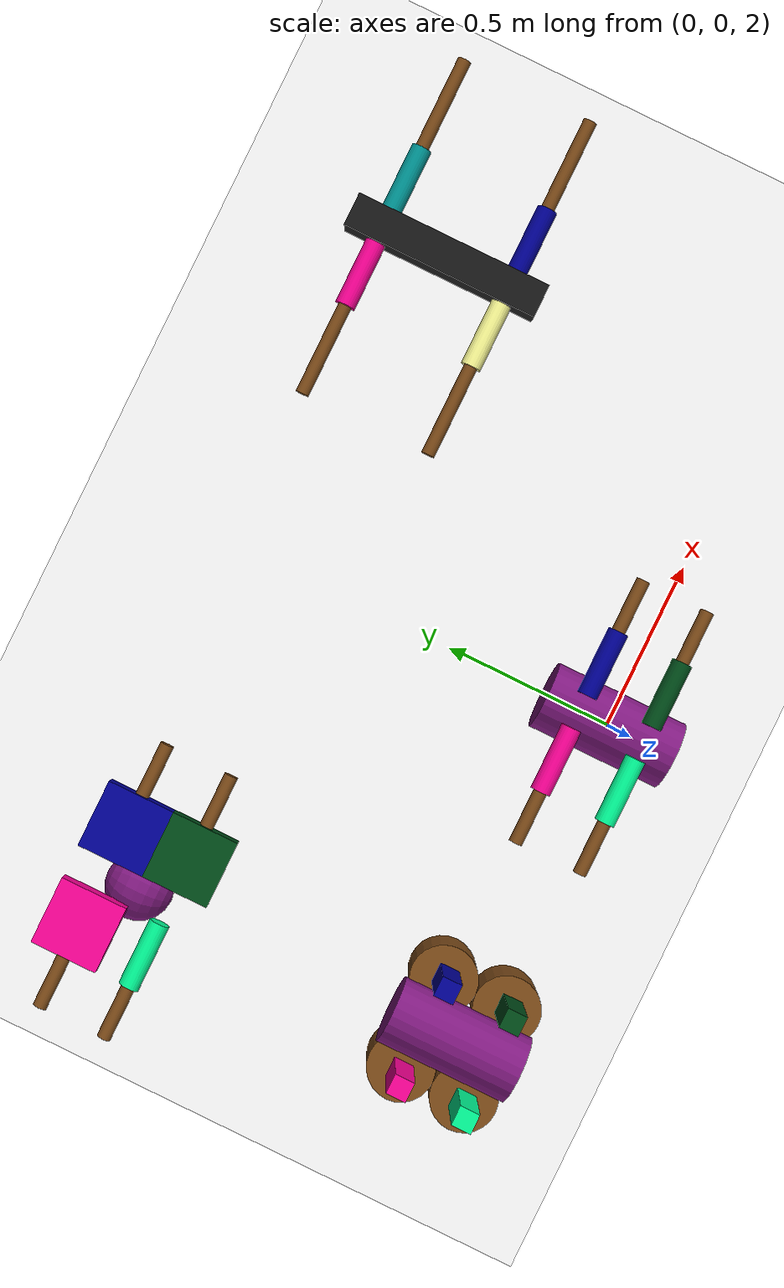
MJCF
<mujoco>
    <option gravity="0 0 -9.81"/>
    <worldbody>
        <light diffuse="0.8 0.8 0.8" pos="0 0 8" dir="0 0 -1"/>
        <geom type="plane" size="3 3 0.1" rgba="1 1 1 1"/>
        <!-- Main Body -->
        <body name="main_body" pos="0 0 2">
            <joint name="main_body" type="free"/>
            <geom type="cylinder" size="0.1 0.2" rgba="0.5 0.1 0.5 1" euler="90 0 90" mass="15"/> <!-- Changed to cylinder -->
            <!-- lightgreen Leg -->
            <body name="leg1" pos="-0.15 -0.1 0.1" euler="0 90 0">
                <joint name="leg1-1" pos="0 0 0.1 " type="hinge" axis="0 1 0" range="-45 45"/>
                <geom type="cylinder" size="0.03 0.1" rgba="0 1 0.6 1"/>
                <body pos="0 0 -0.18">
                    <joint name="leg1-2" pos="0 0 0.08" type="hinge" axis="0 1 0" range="-45 45"/>
                    <geom type="cylinder" size="0.02 0.08" rgba="0.5 0.3 0.1 1"/>
                </body>
            </body>

            <!-- hotpink Leg -->
            <body name="leg2" pos="-0.15 0.1 0.1" euler="0 90 0">
                <joint name="leg2-1" pos="0 0 0.1" type="hinge" axis="0 1 0" range="-45 45"/>
                <geom type="cylinder" size="0.03 0.1" rgba="1 0 0.6 1"/>
                <body pos="0 0 -0.18">
                    <joint name="leg2-2" pos="0 0 0.08" type="hinge" axis="0 1 0" range="-45 45"/>
                    <geom type="cylinder" size="0.02 0.08" rgba="0.5 0.3 0.1 1"/>
                </body>
            </body>

            <!-- Green Leg -->
            <body name="leg3" pos="0.15 -0.1 0.1" euler="0 -90 0">
                <joint name="leg3-1" pos="0 0 0.1" type="hinge" axis="0 1 0" range="-45 45"/>
                <geom type="cylinder" size="0.03 0.1" rgba="0 0.3 0.1 1"/>
                <body pos="0 0 -0.18">
                    <joint name="leg3-2" pos="0 0 0.08" type="hinge" axis="0 1 0" range="-45 45"/>
                    <geom type="cylinder" size="0.02 0.08" rgba="0.5 0.3 0.1 1"/>
                </body>
            </body>

            <!-- Back Right Leg -->
            <body name="leg4" pos="0.15 0.1 0.1" euler="0 -90 0">
                <joint name="leg4-1" pos="0 0 0.1" type="hinge" axis="0 1 0" range="-45 45"/>
                <geom type="cylinder" size="0.03 0.1" rgba="0 0 0.6 1"/>
                <body pos="0 0 -0.18">
                    <joint name="leg4-2" pos="0 0 0.08" type="hinge" axis="0 1 0" range="-45 45"/>
                    <geom type="cylinder" size="0.02 0.08" rgba="0.5 0.3 0.1 1"/>
                </body>
            </body>
        </body>

        <!-- second body -->

        <body name="main_body2" pos="1 1 2">
            <joint name="main_body2" type="free"/>
            <geom type="box" size="0.05 0.3 0.05" rgba="0.1 0.1 0.1 1" mass="15"/> <!-- Changed to cylinder -->

            <!-- Yellow Leg -->
            <body name="front_left_leg2" pos="-0.15 -0.2 0" euler="0 90 0">
                <joint name="fl1-2" pos="0 0 0.1 " type="hinge" axis="0 1 0" range="-45 45"/>
                <geom type="cylinder" size="0.03 0.1" rgba="1 1 0.6 1"/>
                <body pos="0 0 -0.18">
                    <joint name="fl2-2" pos="0 0 0.08" type="hinge" axis="0 1 0" range="-45 45"/>
                    <geom type="cylinder" size="0.02 0.2" rgba="0.5 0.3 0.1 1"/>
                </body>
            </body>

            <!-- Pink Leg -->
            <body name="front_right_leg2" pos="-0.15 0.2 0" euler="0 90 0">
                <joint name="fr1-2" pos="0 0 0.1" type="hinge" axis="0 1 0" range="-45 45"/>
                <geom type="cylinder" size="0.03 0.1" rgba="1 0 0.6 1"/>
                <body pos="0 0 -0.18">
                    <joint name="fr2-2" pos="0 0 0.08" type="hinge" axis="0 1 0" range="-45 45"/>
                    <geom type="cylinder" size="0.02 0.2" rgba="0.5 0.3 0.1 1"/>
                </body>
            </body>

            <!-- Blue Leg -->
            <body name="back_left_leg2" pos="0.15 -0.2 0" euler="0 -90 0">
                <joint name="bl1-2" pos="0 0 0.1" type="hinge" axis="0 1 0" range="-45 45"/>
                <geom type="cylinder" size="0.03 0.1" rgba="0 0 0.6 1"/>
                <body pos="0 0 -0.18">
                    <joint name="bl2-2" pos="0 0 0.08" type="hinge" axis="0 1 0" range="-45 45"/>
                    <geom type="cylinder" size="0.02 0.2" rgba="0.5 0.3 0.1 1"/>
                </body>
            </body>

            <!-- Teal Leg -->
            <body name="back_right_leg2" pos="0.15 0.2 0" euler="0 -90 0">
                <joint name="br1-2" pos="0 0 0.1" type="hinge" axis="0 1 0" range="-45 45"/>
                <geom type="cylinder" size="0.03 0.1" rgba="0 0.6 0.6 1"/>
                <body pos="0 0 -0.18">
                    <joint name="br2-2" pos="0 0 0.08" type="hinge" axis="0 1 0" range="-45 45"/>
                    <geom type="cylinder" size="0.02 0.2" rgba="0.5 0.3 0.1 1"/>
                </body>
            </body>
        </body>

        <!-- third body -->

        <body name="main_body3" pos="-1 0 2">
            <joint name="main_body3" type="free"/>
            <geom type="cylinder" size="0.1 0.2" rgba="0.5 0.1 0.5 1" euler="90 0 90" mass="3"/> <!-- Changed to cylinder -->
            <!-- lightgreen Leg -->
            <body name="good" pos="-0.15 -0.1 0.1">
                <joint name="good1-1" pos="0 0 -0.1 " type="hinge" axis="0 1 0" range="-45 45"/>
                <geom type="box" size="0.03 0.03 0.1" rgba="0 1 0.6 1" mass="1"/>
                <body pos="0.01 0 -0.18">
                    <joint name="good1-2" pos="0 0 0.08" type="hinge" axis="0 1 0" range="-45 45"/>
                    <geom type="cylinder" size="0.1 0.08" rgba="0.5 0.3 0.1 1" mass="30"/>
                </body>
            </body>

            <!-- hotpink Leg -->
            <body name="good2" pos="-0.15 0.1 0.1">
                <joint name="good2-1" pos="0 0 -0.1" type="hinge" axis="0 1 0" range="-45 45"/>
                <geom type="box" size="0.03 0.03 0.1" rgba="1 0 0.6 1" mass="1"/>
                <body pos="0.01 0 -0.18">
                    <joint name="good2-2" pos="0 0 0.08" type="hinge" axis="0 1 0" range="-45 45"/>
                    <geom type="cylinder" size="0.1 0.08" rgba="0.5 0.3 0.1 1" mass="30"/>
                </body>
            </body>

            <!-- Green Leg -->
            <body name="good3" pos="0.15 -0.1 0.1">
                <joint name="good3-1" pos="0 0 -0.1" type="hinge" axis="0 1 0" range="-45 45"/>
                <geom type="box" size="0.03 0.03 0.1" rgba="0 0.3 0.1 1" mass="1"/>
                <body pos="-0.01 0 -0.18">
                    <joint name="good3-2" pos="0 0 0.08" type="hinge" axis="0 1 0" range="-45 45"/>
                    <geom type="cylinder" size="0.1 0.08" rgba="0.5 0.3 0.1 1" mass="30"/>
                </body>
            </body>

            <!-- Blue Leg -->
            <body name="good4" pos="0.15 0.1 0.1">
                <joint name="good4-1" pos="0 0 -0.1" type="hinge" axis="0 1 0" range="-45 45"/>
                <geom type="box" size="0.03 0.03 0.1" rgba="0 0 0.6 1" mass="1"/>
                <body pos="-0.01 0 -0.18">
                    <joint name="good4-2" pos="0 0 0.08" type="hinge" axis="0 1 0" range="-45 45"/>
                    <geom type="cylinder" size="0.1 0.08" rgba="0.5 0.3 0.1 1" mass="30"/>
                </body>
            </body>
        </body>

        <!-- fourth body -->

        <body name="main_body4" pos="-1 1 2">
            <joint name="main_body4" type="free"/>
            <geom type="sphere" size="0.1" rgba="0.5 0.1 0.5 1" euler="90 0 90" mass="15"/> <!-- Changed to cylinder -->
            <!-- lightgreen Leg -->
            <body name="sphere" pos="-0.15 -0.1 0.1" euler="0 90 0">
                <joint name="sphere1-1" pos="0 0 0.1 " type="hinge" axis="0 1 0" range="-45 45"/>
                <geom type="cylinder" size="0.03 0.1" rgba="0 1 0.6 1"/>
                <body pos="0 0 -0.18">
                    <joint name="sphere1-2" pos="0 0 0.08" type="hinge" axis="0 1 0" range="-45 45"/>
                    <geom type="cylinder" size="0.02 0.08" rgba="0.5 0.3 0.1 1"/>
                </body>
            </body>

            <!-- hotpink Leg -->
            <body name="sphere2" pos="-0.15 0.1 0.1" euler="0 90 0">
                <joint name="sphere2-1" pos="0 0 0.1" type="hinge" axis="0 1 0" range="-45 45"/>
                <geom type="box" size="0.03 0.1 0.1" rgba="1 0 0.6 1"/>
                <body pos="0 0 -0.18">
                    <joint name="sphere2-2" pos="0 0 0.08" type="hinge" axis="0 1 0" range="-45 45"/>
                    <geom type="cylinder" size="0.02 0.08" rgba="0.5 0.3 0.1 1"/>
                </body>
            </body>

            <!-- Green Leg -->
            <body name="sphere3" pos="0.15 -0.1 0.1" euler="0 -90 0">
                <joint name="sphere3-1" pos="0 0 0.1" type="hinge" axis="0 1 0" range="-45 45"/>
                <geom type="box" size="0.03 0.1 0.1" rgba="0 0.3 0.1 1"/>
                <body pos="0 0 -0.18">
                    <joint name="sphere3-2" pos="0 0 0.08" type="hinge" axis="0 1 0" range="-45 45"/>
                    <geom type="cylinder" size="0.02 0.08" rgba="0.5 0.3 0.1 1"/>
                </body>
            </body>

            <!-- Back Right Leg -->
            <body name="sphere4" pos="0.15 0.1 0.1" euler="0 -90 0">
                <joint name="sphere4-1" pos="0 0 0.1" type="hinge" axis="0 1 0" range="-45 45"/>
                <geom type="box" size="0.03 0.1 0.1" rgba="0 0 0.6 1"/>
                <body pos="0 0 -0.18">
                    <joint name="sphere4-2" pos="0 0 0.08" type="hinge" axis="0 1 0" range="-45 45"/>
                    <geom type="cylinder" size="0.02 0.08" rgba="0.5 0.3 0.1 1"/>
                </body>
            </body>
        </body>

    </worldbody>
    <actuator>
        <motor joint="leg1-1" name="fl1j"/>
        <motor joint="leg1-2" name="fl2j"/>
        <motor joint="leg3-1" name="bl1j"/>
        <motor joint="leg3-2" name="bl2j"/>
        <motor joint="leg2-1" name="fr1j"/>
        <motor joint="leg2-2" name="fr2j"/>
        <motor joint="leg4-1" name="br1j"/>
        <motor joint="leg4-2" name="br2j"/>
    </actuator>
</mujoco>
